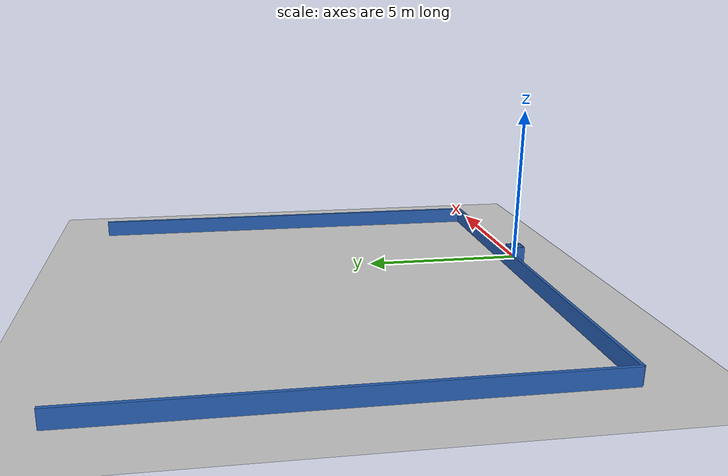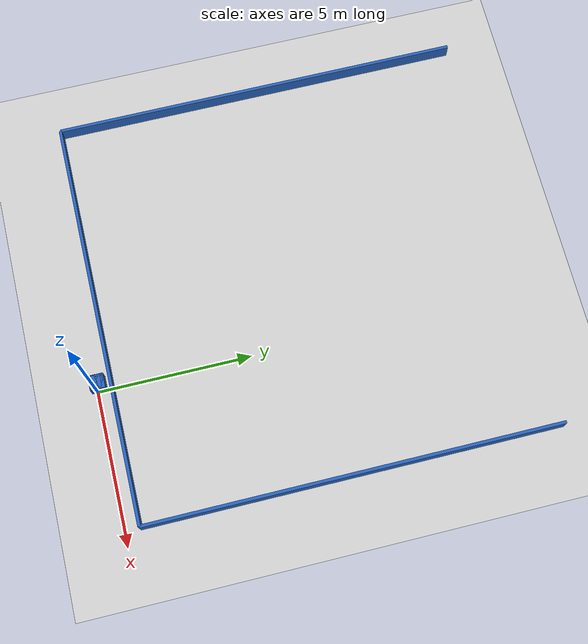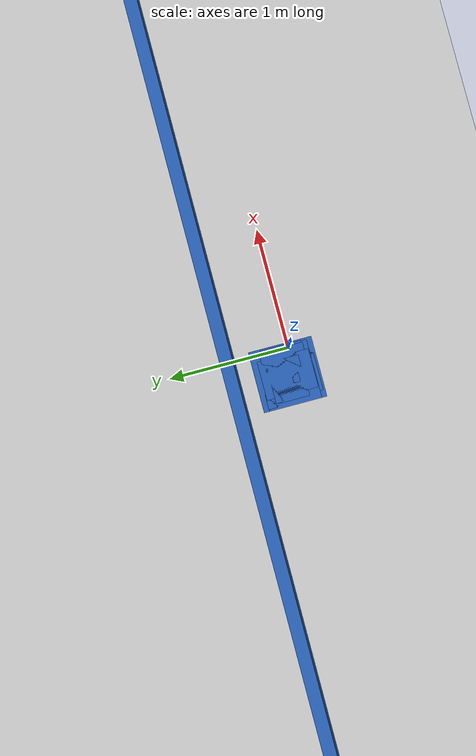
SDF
<?xml version="1.0" ?>
    <sdf version="1.5">
      <world name="default">
        <!-- A global light source -->
        <include>
          <uri>model://sun</uri>
        </include>
        <!-- A ground plane -->
        <include>
          <uri>model://ground_plane</uri>
        </include>

    <model name='libopen_space_final_T2B_115_16'>
      <static>1</static>
      <pose frame=''>-0.225000 0.075000 0.000000 0.000000 0.000000 0.000000</pose>
      <link name='link'>
        <inertial>
          <mass>1</mass>
          <inertia>
            <ixx>0.145833</ixx>
            <ixy>0</ixy>
            <ixz>0</ixz>
            <iyy>0.145833</iyy>
            <iyz>0</iyz>
            <izz>0.125</izz>
          </inertia>
        </inertial>
        <collision name='collision'>
          <geometry>
            <box>
              <size>0.16 0.30 1</size>
            </box>
          </geometry>
          <max_contacts>10</max_contacts>
          <surface>
            <contact>
              <ode/>
            </contact>
            <bounce/>
            <friction>
              <torsional>
                <ode/>
              </torsional>
              <ode/>
            </friction>
          </surface>
        </collision>
        <visual name='visual'>
          <geometry>
            <box>
              <size>0.16 0.30 1</size>
            </box>
          </geometry>
	    <material>
              <ambient>0.152000 0.379000 0.720000 1</ambient>
	      <diffuse>0.152000 0.379000 0.720000 1</diffuse>
          </material>
          <material>
            <script>
              <name>Gazebo/Grey</name>
              <uri>file://media/materials/scripts/gazebo.material</uri>
            </script>
          </material>
        </visual>
        <self_collide>0</self_collide>
        <kinematic>0</kinematic>
        <gravity>1</gravity>
      </link>
      <plugin name='libopen_space_final_T2B_115_16' filename='libopen_space_final_T2B_115_16.so'/>
    </model>

    <model name='libopen_space_final_T2B_115_72'>
      <static>1</static>
      <pose frame=''>-0.225000 0.075000 0.000000 0.000000 0.000000 0.000000</pose>
      <link name='link'>
        <inertial>
          <mass>1</mass>
          <inertia>
            <ixx>0.145833</ixx>
            <ixy>0</ixy>
            <ixz>0</ixz>
            <iyy>0.145833</iyy>
            <iyz>0</iyz>
            <izz>0.125</izz>
          </inertia>
        </inertial>
        <collision name='collision'>
          <geometry>
            <box>
              <size>0.38 0.28 1</size>
            </box>
          </geometry>
          <max_contacts>10</max_contacts>
          <surface>
            <contact>
              <ode/>
            </contact>
            <bounce/>
            <friction>
              <torsional>
                <ode/>
              </torsional>
              <ode/>
            </friction>
          </surface>
        </collision>
        <visual name='visual'>
          <geometry>
            <box>
              <size>0.38 0.28 1</size>
            </box>
          </geometry>
	    <material>
              <ambient>0.152000 0.379000 0.720000 1</ambient>
	      <diffuse>0.152000 0.379000 0.720000 1</diffuse>
          </material>
          <material>
            <script>
              <name>Gazebo/Grey</name>
              <uri>file://media/materials/scripts/gazebo.material</uri>
            </script>
          </material>
        </visual>
        <self_collide>0</self_collide>
        <kinematic>0</kinematic>
        <gravity>1</gravity>
      </link>
      <plugin name='libopen_space_final_T2B_115_72' filename='libopen_space_final_T2B_115_72.so'/>
    </model>

    <model name='libopen_space_final_T2B_94_79'>
      <static>1</static>
      <pose frame=''>-0.225000 0.075000 0.000000 0.000000 0.000000 0.000000</pose>
      <link name='link'>
        <inertial>
          <mass>1</mass>
          <inertia>
            <ixx>0.145833</ixx>
            <ixy>0</ixy>
            <ixz>0</ixz>
            <iyy>0.145833</iyy>
            <iyz>0</iyz>
            <izz>0.125</izz>
          </inertia>
        </inertial>
        <collision name='collision'>
          <geometry>
            <box>
              <size>0.39 0.24 1</size>
            </box>
          </geometry>
          <max_contacts>10</max_contacts>
          <surface>
            <contact>
              <ode/>
            </contact>
            <bounce/>
            <friction>
              <torsional>
                <ode/>
              </torsional>
              <ode/>
            </friction>
          </surface>
        </collision>
        <visual name='visual'>
          <geometry>
            <box>
              <size>0.39 0.24 1</size>
            </box>
          </geometry>
	    <material>
              <ambient>0.152000 0.379000 0.720000 1</ambient>
	      <diffuse>0.152000 0.379000 0.720000 1</diffuse>
          </material>
          <material>
            <script>
              <name>Gazebo/Grey</name>
              <uri>file://media/materials/scripts/gazebo.material</uri>
            </script>
          </material>
        </visual>
        <self_collide>0</self_collide>
        <kinematic>0</kinematic>
        <gravity>1</gravity>
      </link>
      <plugin name='libopen_space_final_T2B_94_79' filename='libopen_space_final_T2B_94_79.so'/>
    </model>

    <model name='libopen_space_final_T2B_52_73'>
      <static>1</static>
      <pose frame=''>-0.225000 0.075000 0.000000 0.000000 0.000000 0.000000</pose>
      <link name='link'>
        <inertial>
          <mass>1</mass>
          <inertia>
            <ixx>0.145833</ixx>
            <ixy>0</ixy>
            <ixz>0</ixz>
            <iyy>0.145833</iyy>
            <iyz>0</iyz>
            <izz>0.125</izz>
          </inertia>
        </inertial>
        <collision name='collision'>
          <geometry>
            <box>
              <size>0.15 0.16 1</size>
            </box>
          </geometry>
          <max_contacts>10</max_contacts>
          <surface>
            <contact>
              <ode/>
            </contact>
            <bounce/>
            <friction>
              <torsional>
                <ode/>
              </torsional>
              <ode/>
            </friction>
          </surface>
        </collision>
        <visual name='visual'>
          <geometry>
            <box>
              <size>0.15 0.16 1</size>
            </box>
          </geometry>
	    <material>
              <ambient>0.152000 0.379000 0.720000 1</ambient>
	      <diffuse>0.152000 0.379000 0.720000 1</diffuse>
          </material>
          <material>
            <script>
              <name>Gazebo/Grey</name>
              <uri>file://media/materials/scripts/gazebo.material</uri>
            </script>
          </material>
        </visual>
        <self_collide>0</self_collide>
        <kinematic>0</kinematic>
        <gravity>1</gravity>
      </link>
      <plugin name='libopen_space_final_T2B_52_73' filename='libopen_space_final_T2B_52_73.so'/>
    </model>

    <model name='libopen_space_final_T2B_119_97'>
      <static>1</static>
      <pose frame=''>-0.225000 0.075000 0.000000 0.000000 0.000000 0.000000</pose>
      <link name='link'>
        <inertial>
          <mass>1</mass>
          <inertia>
            <ixx>0.145833</ixx>
            <ixy>0</ixy>
            <ixz>0</ixz>
            <iyy>0.145833</iyy>
            <iyz>0</iyz>
            <izz>0.125</izz>
          </inertia>
        </inertial>
        <collision name='collision'>
          <geometry>
            <box>
              <size>0.47 0.41 1</size>
            </box>
          </geometry>
          <max_contacts>10</max_contacts>
          <surface>
            <contact>
              <ode/>
            </contact>
            <bounce/>
            <friction>
              <torsional>
                <ode/>
              </torsional>
              <ode/>
            </friction>
          </surface>
        </collision>
        <visual name='visual'>
          <geometry>
            <box>
              <size>0.47 0.41 1</size>
            </box>
          </geometry>
	    <material>
              <ambient>0.152000 0.379000 0.720000 1</ambient>
	      <diffuse>0.152000 0.379000 0.720000 1</diffuse>
          </material>
          <material>
            <script>
              <name>Gazebo/Grey</name>
              <uri>file://media/materials/scripts/gazebo.material</uri>
            </script>
          </material>
        </visual>
        <self_collide>0</self_collide>
        <kinematic>0</kinematic>
        <gravity>1</gravity>
      </link>
      <plugin name='libopen_space_final_T2B_119_97' filename='libopen_space_final_T2B_119_97.so'/>
    </model>

    <model name='libopen_space_final_T2B_85_62'>
      <static>1</static>
      <pose frame=''>-0.225000 0.075000 0.000000 0.000000 0.000000 0.000000</pose>
      <link name='link'>
        <inertial>
          <mass>1</mass>
          <inertia>
            <ixx>0.145833</ixx>
            <ixy>0</ixy>
            <ixz>0</ixz>
            <iyy>0.145833</iyy>
            <iyz>0</iyz>
            <izz>0.125</izz>
          </inertia>
        </inertial>
        <collision name='collision'>
          <geometry>
            <box>
              <size>0.42 0.34 1</size>
            </box>
          </geometry>
          <max_contacts>10</max_contacts>
          <surface>
            <contact>
              <ode/>
            </contact>
            <bounce/>
            <friction>
              <torsional>
                <ode/>
              </torsional>
              <ode/>
            </friction>
          </surface>
        </collision>
        <visual name='visual'>
          <geometry>
            <box>
              <size>0.42 0.34 1</size>
            </box>
          </geometry>
	    <material>
              <ambient>0.152000 0.379000 0.720000 1</ambient>
	      <diffuse>0.152000 0.379000 0.720000 1</diffuse>
          </material>
          <material>
            <script>
              <name>Gazebo/Grey</name>
              <uri>file://media/materials/scripts/gazebo.material</uri>
            </script>
          </material>
        </visual>
        <self_collide>0</self_collide>
        <kinematic>0</kinematic>
        <gravity>1</gravity>
      </link>
      <plugin name='libopen_space_final_T2B_85_62' filename='libopen_space_final_T2B_85_62.so'/>
    </model>

    <model name='libopen_space_final_T2B_67_47'>
      <static>1</static>
      <pose frame=''>-0.225000 0.075000 0.000000 0.000000 0.000000 0.000000</pose>
      <link name='link'>
        <inertial>
          <mass>1</mass>
          <inertia>
            <ixx>0.145833</ixx>
            <ixy>0</ixy>
            <ixz>0</ixz>
            <iyy>0.145833</iyy>
            <iyz>0</iyz>
            <izz>0.125</izz>
          </inertia>
        </inertial>
        <collision name='collision'>
          <geometry>
            <box>
              <size>0.36 0.46 1</size>
            </box>
          </geometry>
          <max_contacts>10</max_contacts>
          <surface>
            <contact>
              <ode/>
            </contact>
            <bounce/>
            <friction>
              <torsional>
                <ode/>
              </torsional>
              <ode/>
            </friction>
          </surface>
        </collision>
        <visual name='visual'>
          <geometry>
            <box>
              <size>0.36 0.46 1</size>
            </box>
          </geometry>
	    <material>
              <ambient>0.152000 0.379000 0.720000 1</ambient>
	      <diffuse>0.152000 0.379000 0.720000 1</diffuse>
          </material>
          <material>
            <script>
              <name>Gazebo/Grey</name>
              <uri>file://media/materials/scripts/gazebo.material</uri>
            </script>
          </material>
        </visual>
        <self_collide>0</self_collide>
        <kinematic>0</kinematic>
        <gravity>1</gravity>
      </link>
      <plugin name='libopen_space_final_T2B_67_47' filename='libopen_space_final_T2B_67_47.so'/>
    </model>

    <model name='libopen_space_final_T2B_121_6'>
      <static>1</static>
      <pose frame=''>-0.225000 0.075000 0.000000 0.000000 0.000000 0.000000</pose>
      <link name='link'>
        <inertial>
          <mass>1</mass>
          <inertia>
            <ixx>0.145833</ixx>
            <ixy>0</ixy>
            <ixz>0</ixz>
            <iyy>0.145833</iyy>
            <iyz>0</iyz>
            <izz>0.125</izz>
          </inertia>
        </inertial>
        <collision name='collision'>
          <geometry>
            <box>
              <size>0.44 0.41 1</size>
            </box>
          </geometry>
          <max_contacts>10</max_contacts>
          <surface>
            <contact>
              <ode/>
            </contact>
            <bounce/>
            <friction>
              <torsional>
                <ode/>
              </torsional>
              <ode/>
            </friction>
          </surface>
        </collision>
        <visual name='visual'>
          <geometry>
            <box>
              <size>0.44 0.41 1</size>
            </box>
          </geometry>
	    <material>
              <ambient>0.152000 0.379000 0.720000 1</ambient>
	      <diffuse>0.152000 0.379000 0.720000 1</diffuse>
          </material>
          <material>
            <script>
              <name>Gazebo/Grey</name>
              <uri>file://media/materials/scripts/gazebo.material</uri>
            </script>
          </material>
        </visual>
        <self_collide>0</self_collide>
        <kinematic>0</kinematic>
        <gravity>1</gravity>
      </link>
      <plugin name='libopen_space_final_T2B_121_6' filename='libopen_space_final_T2B_121_6.so'/>
    </model>

    <model name='libopen_space_final_T2B_115_24'>
      <static>1</static>
      <pose frame=''>-0.225000 0.075000 0.000000 0.000000 0.000000 0.000000</pose>
      <link name='link'>
        <inertial>
          <mass>1</mass>
          <inertia>
            <ixx>0.145833</ixx>
            <ixy>0</ixy>
            <ixz>0</ixz>
            <iyy>0.145833</iyy>
            <iyz>0</iyz>
            <izz>0.125</izz>
          </inertia>
        </inertial>
        <collision name='collision'>
          <geometry>
            <box>
              <size>0.30 0.40 1</size>
            </box>
          </geometry>
          <max_contacts>10</max_contacts>
          <surface>
            <contact>
              <ode/>
            </contact>
            <bounce/>
            <friction>
              <torsional>
                <ode/>
              </torsional>
              <ode/>
            </friction>
          </surface>
        </collision>
        <visual name='visual'>
          <geometry>
            <box>
              <size>0.30 0.40 1</size>
            </box>
          </geometry>
	    <material>
              <ambient>0.152000 0.379000 0.720000 1</ambient>
	      <diffuse>0.152000 0.379000 0.720000 1</diffuse>
          </material>
          <material>
            <script>
              <name>Gazebo/Grey</name>
              <uri>file://media/materials/scripts/gazebo.material</uri>
            </script>
          </material>
        </visual>
        <self_collide>0</self_collide>
        <kinematic>0</kinematic>
        <gravity>1</gravity>
      </link>
      <plugin name='libopen_space_final_T2B_115_24' filename='libopen_space_final_T2B_115_24.so'/>
    </model>

    <model name='libopen_space_final_T2B_103_35'>
      <static>1</static>
      <pose frame=''>-0.225000 0.075000 0.000000 0.000000 0.000000 0.000000</pose>
      <link name='link'>
        <inertial>
          <mass>1</mass>
          <inertia>
            <ixx>0.145833</ixx>
            <ixy>0</ixy>
            <ixz>0</ixz>
            <iyy>0.145833</iyy>
            <iyz>0</iyz>
            <izz>0.125</izz>
          </inertia>
        </inertial>
        <collision name='collision'>
          <geometry>
            <box>
              <size>0.47 0.49 1</size>
            </box>
          </geometry>
          <max_contacts>10</max_contacts>
          <surface>
            <contact>
              <ode/>
            </contact>
            <bounce/>
            <friction>
              <torsional>
                <ode/>
              </torsional>
              <ode/>
            </friction>
          </surface>
        </collision>
        <visual name='visual'>
          <geometry>
            <box>
              <size>0.47 0.49 1</size>
            </box>
          </geometry>
	    <material>
              <ambient>0.152000 0.379000 0.720000 1</ambient>
	      <diffuse>0.152000 0.379000 0.720000 1</diffuse>
          </material>
          <material>
            <script>
              <name>Gazebo/Grey</name>
              <uri>file://media/materials/scripts/gazebo.material</uri>
            </script>
          </material>
        </visual>
        <self_collide>0</self_collide>
        <kinematic>0</kinematic>
        <gravity>1</gravity>
      </link>
      <plugin name='libopen_space_final_T2B_103_35' filename='libopen_space_final_T2B_103_35.so'/>
    </model>

    <model name='libopen_space_final_T2B_96_80'>
      <static>1</static>
      <pose frame=''>-0.225000 0.075000 0.000000 0.000000 0.000000 0.000000</pose>
      <link name='link'>
        <inertial>
          <mass>1</mass>
          <inertia>
            <ixx>0.145833</ixx>
            <ixy>0</ixy>
            <ixz>0</ixz>
            <iyy>0.145833</iyy>
            <iyz>0</iyz>
            <izz>0.125</izz>
          </inertia>
        </inertial>
        <collision name='collision'>
          <geometry>
            <box>
              <size>0.25 0.23 1</size>
            </box>
          </geometry>
          <max_contacts>10</max_contacts>
          <surface>
            <contact>
              <ode/>
            </contact>
            <bounce/>
            <friction>
              <torsional>
                <ode/>
              </torsional>
              <ode/>
            </friction>
          </surface>
        </collision>
        <visual name='visual'>
          <geometry>
            <box>
              <size>0.25 0.23 1</size>
            </box>
          </geometry>
	    <material>
              <ambient>0.152000 0.379000 0.720000 1</ambient>
	      <diffuse>0.152000 0.379000 0.720000 1</diffuse>
          </material>
          <material>
            <script>
              <name>Gazebo/Grey</name>
              <uri>file://media/materials/scripts/gazebo.material</uri>
            </script>
          </material>
        </visual>
        <self_collide>0</self_collide>
        <kinematic>0</kinematic>
        <gravity>1</gravity>
      </link>
      <plugin name='libopen_space_final_T2B_96_80' filename='libopen_space_final_T2B_96_80.so'/>
    </model>

    <model name='libopen_space_final_T2B_140_51'>
      <static>1</static>
      <pose frame=''>-0.225000 0.075000 0.000000 0.000000 0.000000 0.000000</pose>
      <link name='link'>
        <inertial>
          <mass>1</mass>
          <inertia>
            <ixx>0.145833</ixx>
            <ixy>0</ixy>
            <ixz>0</ixz>
            <iyy>0.145833</iyy>
            <iyz>0</iyz>
            <izz>0.125</izz>
          </inertia>
        </inertial>
        <collision name='collision'>
          <geometry>
            <box>
              <size>0.45 0.32 1</size>
            </box>
          </geometry>
          <max_contacts>10</max_contacts>
          <surface>
            <contact>
              <ode/>
            </contact>
            <bounce/>
            <friction>
              <torsional>
                <ode/>
              </torsional>
              <ode/>
            </friction>
          </surface>
        </collision>
        <visual name='visual'>
          <geometry>
            <box>
              <size>0.45 0.32 1</size>
            </box>
          </geometry>
	    <material>
              <ambient>0.152000 0.379000 0.720000 1</ambient>
	      <diffuse>0.152000 0.379000 0.720000 1</diffuse>
          </material>
          <material>
            <script>
              <name>Gazebo/Grey</name>
              <uri>file://media/materials/scripts/gazebo.material</uri>
            </script>
          </material>
        </visual>
        <self_collide>0</self_collide>
        <kinematic>0</kinematic>
        <gravity>1</gravity>
      </link>
      <plugin name='libopen_space_final_T2B_140_51' filename='libopen_space_final_T2B_140_51.so'/>
    </model>

        <model name='bottom_wall'>
          <static>1</static>
          <pose frame=''>-2.25 0.5 0.000000 0.000000 0.000000 1.57079632</pose>
          <link name='link'>
            <inertial>
            <mass>1</mass>
            <inertia>
              <ixx>0.145833</ixx>
              <ixy>0</ixy>
              <ixz>0</ixz>
              <iyy>0.145833</iyy>
              <iyz>0</iyz>
              <izz>0.125</izz>
            </inertia>
            </inertial>
            <collision name='collision'>
            <geometry>
              <box>
              <size>0.1 13.5 1</size>
              </box>
            </geometry>
            <max_contacts>10</max_contacts>
            <surface>
              <contact>
              <ode/>
              </contact>
              <bounce/>
              <friction>
              <torsional>
                <ode/>
              </torsional>
              <ode/>
              </friction>
            </surface>
            </collision>
            <visual name='visual'>
            <geometry>
              <box>
              <size>0.1 13.5 1</size>
              </box>
            </geometry>
            <material>
              <ambient>0.152000 0.379000 0.720000 1</ambient>
            <diffuse>0.152000 0.379000 0.720000 1</diffuse>
            </material>
            <material>
              <script>
              <name>Gazebo/Grey</name>
              <uri>file://media/materials/scripts/gazebo.material</uri>
              </script>
            </material>
            </visual>
            <self_collide>0</self_collide>
            <kinematic>0</kinematic>
            <gravity>1</gravity>
          </link>
        </model>

        <model name='left_wall'>
          <static>1</static>
          <pose frame=''>-9 7.25 0.000000 0.000000 0.000000 0.000000</pose>
          <link name='link'>
            <inertial>
            <mass>1</mass>
            <inertia>
              <ixx>0.145833</ixx>
              <ixy>0</ixy>
              <ixz>0</ixz>
              <iyy>0.145833</iyy>
              <iyz>0</iyz>
              <izz>0.125</izz>
            </inertia>
            </inertial>
            <collision name='collision'>
            <geometry>
              <box>
              <size>0.1 13.5 1</size>
              </box>
            </geometry>
            <max_contacts>10</max_contacts>
            <surface>
              <contact>
              <ode/>
              </contact>
              <bounce/>
              <friction>
              <torsional>
                <ode/>
              </torsional>
              <ode/>
              </friction>
            </surface>
            </collision>
            <visual name='visual'>
            <geometry>
              <box>
              <size>0.1 13.5 1</size>
              </box>
            </geometry>
            <material>
              <ambient>0.152000 0.379000 0.720000 1</ambient>
            <diffuse>0.152000 0.379000 0.720000 1</diffuse>
            </material>
            <material>
              <script>
              <name>Gazebo/Grey</name>
              <uri>file://media/materials/scripts/gazebo.material</uri>
              </script>
            </material>
            </visual>
            <self_collide>0</self_collide>
            <kinematic>0</kinematic>
            <gravity>1</gravity>
          </link>
        </model>

        <model name='right_wall'>
          <static>1</static>
          <pose frame=''>4.5 7.25 0.000000 0.000000 0.000000 0.000000</pose>
          <link name='link'>
            <inertial>
            <mass>1</mass>
            <inertia>
              <ixx>0.145833</ixx>
              <ixy>0</ixy>
              <ixz>0</ixz>
              <iyy>0.145833</iyy>
              <iyz>0</iyz>
              <izz>0.125</izz>
            </inertia>
            </inertial>
            <collision name='collision'>
            <geometry>
              <box>
              <size>0.1 13.5 1</size>
              </box>
            </geometry>
            <max_contacts>10</max_contacts>
            <surface>
              <contact>
              <ode/>
              </contact>
              <bounce/>
              <friction>
              <torsional>
                <ode/>
              </torsional>
              <ode/>
              </friction>
            </surface>
            </collision>
            <visual name='visual'>
            <geometry>
              <box>
              <size>0.1 13.5 1</size>
              </box>
            </geometry>
            <material>
              <ambient>0.152000 0.379000 0.720000 1</ambient>
            <diffuse>0.152000 0.379000 0.720000 1</diffuse>
            </material>
            <material>
              <script>
              <name>Gazebo/Grey</name>
              <uri>file://media/materials/scripts/gazebo.material</uri>
              </script>
            </material>
            </visual>
            <self_collide>0</self_collide>
            <kinematic>0</kinematic>
            <gravity>1</gravity>
          </link>
        </model>

      </world>
    </sdf>"
